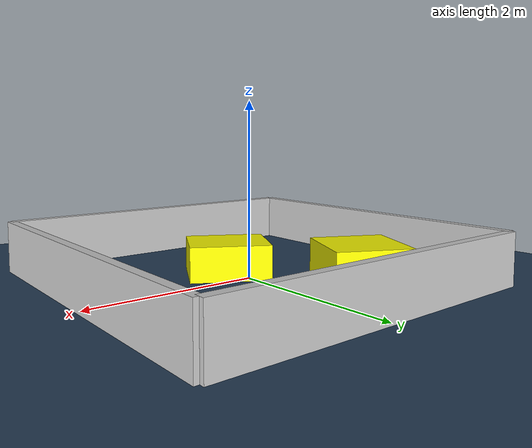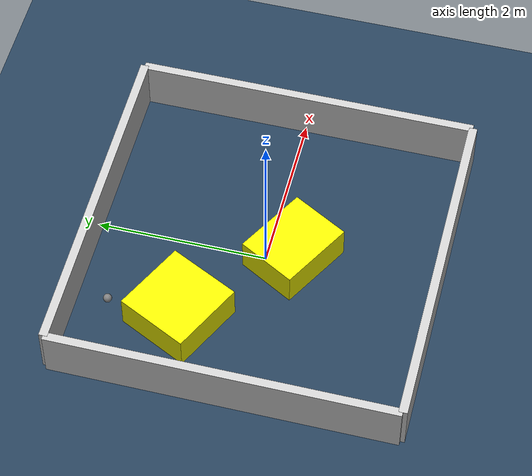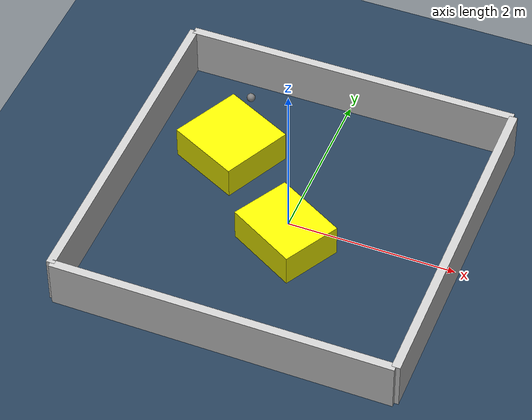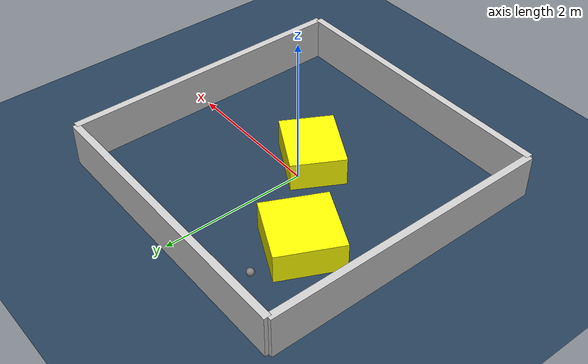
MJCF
<?xml version="1.0" ?>
<mujoco model="generated_environment">
  <option timestep="0.01" integrator="RK4" cone="elliptic"/>
  <default>
    <geom density="1"/>
  </default>
  <asset>
    <texture builtin="gradient" height="3072" rgb1="0.3 0.5 0.7" rgb2="0 0 0" type="skybox" width="512"/>
    <texture builtin="checker" height="300" mark="edge" markrgb="0.8 0.8 0.8" name="groundplane" rgb1="0.2 0.3 0.4" rgb2="0.1 0.2 0.3" type="2d" width="300"/>
    <material name="groundplane" reflectance="0.2" texrepeat="5 5" texture="groundplane" texuniform="true"/>
    <material name="robot" rgba="0.0 1.0 0.0 1"/>
  </asset>
  <worldbody>
    <light dir="0 0 -1" directional="true" pos="0 0 1.5"/>
    <geom condim="4" friction="1.0 0.005 0.001" material="groundplane" name="floor" size="0 0 0.05" type="plane"/>
    <body name="walls">
      <geom name="wall_1" condim="4" pos="-2.0 0.0 0.3" rgba="0.800000011920929 0.800000011920929 0.800000011920929 1.0" size="0.05 2.0 0.3" type="box"/>
      <geom name="wall_2" condim="4" pos="2.0 0.0 0.3" rgba="0.800000011920929 0.800000011920929 0.800000011920929 1.0" size="0.05 2.0 0.3" type="box"/>
      <geom name="wall_3" condim="4" pos="0.0 -2.0 0.3" rgba="0.800000011920929 0.800000011920929 0.800000011920929 1.0" size="2.0 0.05 0.3" type="box"/>
      <geom name="wall_4" condim="4" pos="0.0 2.0 0.3" rgba="0.800000011920929 0.800000011920929 0.800000011920929 1.0" size="2.0 0.05 0.3" type="box"/>
    </body>
    <body name="robot">
      <joint name="joint_x" type="slide" pos="0 0 0" axis="1 0 0"/>
      <joint name="joint_y" type="slide" pos="0 0 0" axis="0 1 0"/>
      <geom name="robot" type="sphere" pos="-1.0952738243439768 1.5617484067397802 0.2" size="0.05" mass="5." friction="1.0 0.005 0.0001" condim="4"/>
      <site name="sensor_ball"/>
    </body>
    <body name="obstacle_1_movable">
      <geom name="obstacle_1_movable" condim="4" pos="-1.0145226454102843 0.756871274751181 0.2" euler="0 0 244.0177169401134" friction="1.0 0.005 0.001" rgba="1 1 0 1" size="0.4426019092192922 0.45466649153285693 0.2" type="box" mass="0.1"/>
      <joint type="free"/>
    </body>
    <body name="obstacle_2_movable">
      <geom name="obstacle_2_movable" condim="4" pos="0.08513901925303657 -0.30118724472725056 0.2" euler="0 0 150.91490771804212" friction="1.0 0.005 0.001" rgba="1 1 0 1" size="0.45967066338643403 0.36599773821463444 0.2" type="box" mass="0.1"/>
      <joint type="free"/>
    </body>
  </worldbody>
  <actuator>
    <motor name="actuator_x" joint="joint_x" gear="1" ctrlrange="-1 1"/>
    <motor name="actuator_y" joint="joint_y" gear="1" ctrlrange="-1 1"/>
  </actuator>
</mujoco>
